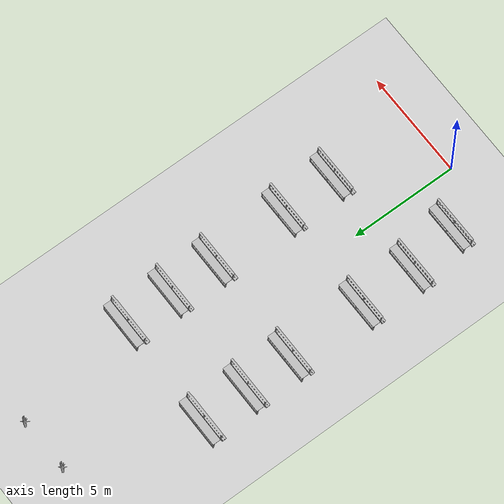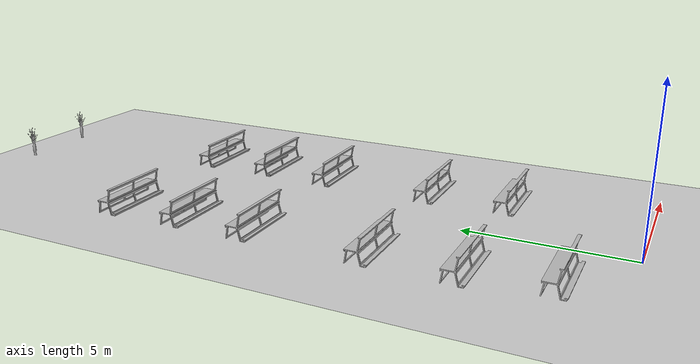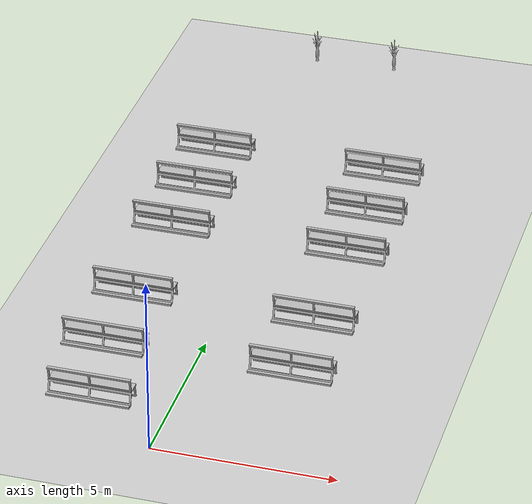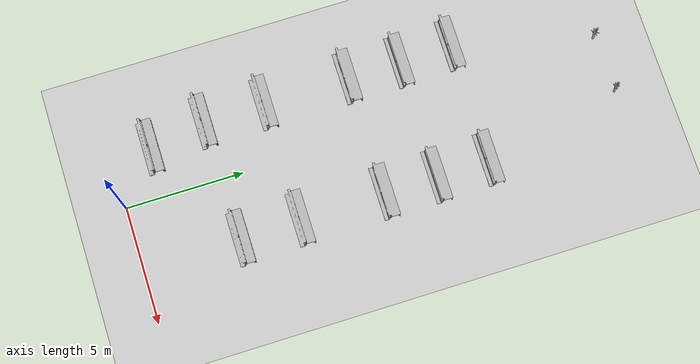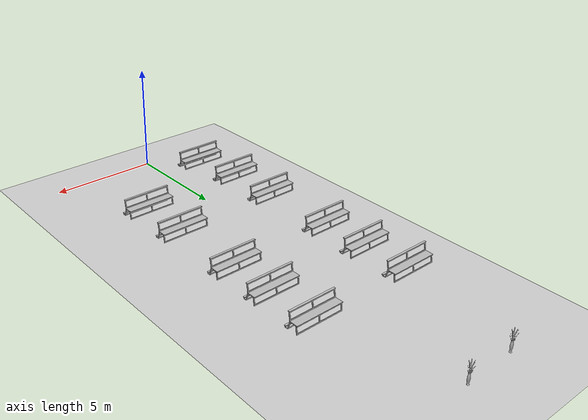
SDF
<sdf version="1.6">
 <world name="default">
  <light name="sun" type="directional">
   <pose>0 0 10 0 -0 0</pose>
   <diffuse>0.8 0.8 0.8 1</diffuse>
   <specular>0.2 0.2 0.2 1</specular>
   <attenuation>
    <range>1000</range>
    <constant>0.9</constant>
    <linear>0.01</linear>
    <quadratic>0.001</quadratic>
   </attenuation>
   <direction>-0.5 0.1 -0.9</direction>
  </light>
  <model name="ground_plane">
   <static>1</static>
   <link name="link">
    <collision name="collision">
     <geometry><plane><normal>0 0 1</normal><size>100 100</size></plane></geometry>
     <surface><friction><ode><mu>100</mu><mu2>50</mu2></ode></friction></surface>
    </collision>
    <visual name="visual">
     <cast_shadows>0</cast_shadows>
     <geometry><plane><normal>0 0 1</normal><size>100 100</size></plane></geometry>
     <material>
      <script><uri>file://media/materials/scripts/gazebo.material</uri><name>Gazebo/Grey</name></script>
     </material>
    </visual>
   </link>
  </model>
  <gravity>0 0 -9.8</gravity>
  <magnetic_field>6e-06 2.3e-05 -4.2e-05</magnetic_field>
  <atmosphere type="adiabatic"/>
  <physics name="default_physics" default="0" type="ode">
   <max_step_size>0.001</max_step_size>
   <real_time_factor>1</real_time_factor>
   <real_time_update_rate>1000</real_time_update_rate>
  </physics>
  <scene><ambient>0.4 0.4 0.4 1</ambient><background>0.7 0.7 0.7 1</background><shadows>1</shadows></scene>
  <spherical_coordinates>
   <surface_model>EARTH_WGS84</surface_model>
   <latitude_deg>0</latitude_deg>
   <longitude_deg>0</longitude_deg>
   <elevation>0</elevation>
   <heading_deg>0</heading_deg>
  </spherical_coordinates>
  <model name="Flower-2">
   <link name="link">
    <collision name="collision">
     <geometry><mesh><uri>model://Flower-2/meshes/model.dae</uri><scale>1 1 1</scale></mesh></geometry>
    </collision>
    <visual name="visual">
     <geometry><mesh><uri>model://Flower-2/meshes/model.dae</uri><scale>1 1 1</scale></mesh></geometry>
    </visual>
   </link>
   <static>1</static>
   <pose>1.01999 17.644 0.391083 0 -0 0</pose>
  </model>
  <model name="Flower-2_clone">
   <link name="link">
    <collision name="collision">
     <geometry><mesh><uri>model://Flower-2/meshes/model.dae</uri><scale>1 1 1</scale></mesh></geometry>
    </collision>
    <visual name="visual">
     <geometry><mesh><uri>model://Flower-2/meshes/model.dae</uri><scale>1 1 1</scale></mesh></geometry>
    </visual>
   </link>
   <static>1</static>
   <pose>3.47155 17.7144 0.404259 0 -0 0</pose>
  </model>
  <model name="Church-bench2_4">
   <link name="link">
    <collision name="collision">
     <geometry><mesh><uri>model://Church-bench2/meshes/model.dae</uri><scale>1 1 1</scale></mesh></geometry>
    </collision>
    <visual name="visual">
     <geometry><mesh><uri>model://Church-bench2/meshes/model.dae</uri><scale>1 1 1</scale></mesh></geometry>
    </visual>
   </link>
   <static>1</static>
   <pose>1.27618 6.1783 0.062704 0 -0 0</pose>
  </model>
  <model name="Church-bench2_5">
   <link name="link">
    <collision name="collision">
     <geometry><mesh><uri>model://Church-bench2/meshes/model.dae</uri><scale>1 1 1</scale></mesh></geometry>
    </collision>
    <visual name="visual">
     <geometry><mesh><uri>model://Church-bench2/meshes/model.dae</uri><scale>1 1 1</scale></mesh></geometry>
    </visual>
   </link>
   <static>1</static>
   <pose>1.24919 9.78851 0.067659 0 -0 0</pose>
  </model>
  <model name="Church-bench2_11">
   <link name="link">
    <collision name="collision">
     <geometry><mesh><uri>model://Church-bench2/meshes/model.dae</uri><scale>1 1 1</scale></mesh></geometry>
    </collision>
    <visual name="visual">
     <geometry><mesh><uri>model://Church-bench2/meshes/model.dae</uri><scale>1 1 1</scale></mesh></geometry>
    </visual>
   </link>
   <static>1</static>
   <pose>-3.43739 1.12889 0.112629 0 -0 0</pose>
  </model>
  <model name="Church-bench2_12">
   <link name="link">
    <collision name="collision">
     <geometry><mesh><uri>model://Church-bench2/meshes/model.dae</uri><scale>1 1 1</scale></mesh></geometry>
    </collision>
    <visual name="visual">
     <geometry><mesh><uri>model://Church-bench2/meshes/model.dae</uri><scale>1 1 1</scale></mesh></geometry>
    </visual>
   </link>
   <static>1</static>
   <pose>-3.85448 3.51068 0.097022 0 -0 0</pose>
  </model>
  <model name="Church-bench2_13">
   <link name="link">
    <collision name="collision">
     <geometry><mesh><uri>model://Church-bench2/meshes/model.dae</uri><scale>1 1 1</scale></mesh></geometry>
    </collision>
    <visual name="visual">
     <geometry><mesh><uri>model://Church-bench2/meshes/model.dae</uri><scale>1 1 1</scale></mesh></geometry>
    </visual>
   </link>
   <static>1</static>
   <pose>-3.86727 6.13475 0.094542 0 -0 0</pose>
  </model>
  <model name="Church-bench2_13_clone">
   <link name="link">
    <collision name="collision">
     <geometry><mesh><uri>model://Church-bench2/meshes/model.dae</uri><scale>1 1 1</scale></mesh></geometry>
    </collision>
    <visual name="visual">
     <geometry><mesh><uri>model://Church-bench2/meshes/model.dae</uri><scale>1 1 1</scale></mesh></geometry>
    </visual>
   </link>
   <static>1</static>
   <pose>-3.90242 9.79284 0.094542 0 -0 0</pose>
  </model>
  <model name="Church-bench2_13_clone_0">
   <link name="link">
    <collision name="collision">
     <geometry><mesh><uri>model://Church-bench2/meshes/model.dae</uri><scale>1 1 1</scale></mesh></geometry>
    </collision>
    <visual name="visual">
     <geometry><mesh><uri>model://Church-bench2/meshes/model.dae</uri><scale>1 1 1</scale></mesh></geometry>
    </visual>
   </link>
   <static>1</static>
   <pose>-3.9164 12.0715 0.094542 0 -0 0</pose>
  </model>
  <model name="Church-bench2_13_clone_1">
   <link name="link">
    <collision name="collision">
     <geometry><mesh><uri>model://Church-bench2/meshes/model.dae</uri><scale>1 1 1</scale></mesh></geometry>
    </collision>
    <visual name="visual">
     <geometry><mesh><uri>model://Church-bench2/meshes/model.dae</uri><scale>1 1 1</scale></mesh></geometry>
    </visual>
   </link>
   <static>1</static>
   <pose>-3.98797 14.3319 0.094542 0 -0 0</pose>
  </model>
  <model name="Church-bench2_13_clone_2">
   <link name="link">
    <collision name="collision">
     <geometry><mesh><uri>model://Church-bench2/meshes/model.dae</uri><scale>1 1 1</scale></mesh></geometry>
    </collision>
    <visual name="visual">
     <geometry><mesh><uri>model://Church-bench2/meshes/model.dae</uri><scale>1 1 1</scale></mesh></geometry>
    </visual>
   </link>
   <static>1</static>
   <pose>1.34171 3.63118 0.094542 0 -0 0</pose>
  </model>
  <model name="Church-bench2_13_clone_3">
   <link name="link">
    <collision name="collision">
     <geometry><mesh><uri>model://Church-bench2/meshes/model.dae</uri><scale>1 1 1</scale></mesh></geometry>
    </collision>
    <visual name="visual">
     <geometry><mesh><uri>model://Church-bench2/meshes/model.dae</uri><scale>1 1 1</scale></mesh></geometry>
    </visual>
   </link>
   <static>1</static>
   <pose>1.23927 12.0345 0.094542 0 -0 0</pose>
  </model>
  <model name="Church-bench2_13_clone_4">
   <link name="link">
    <collision name="collision">
     <geometry><mesh><uri>model://Church-bench2/meshes/model.dae</uri><scale>1 1 1</scale></mesh></geometry>
    </collision>
    <visual name="visual">
     <geometry><mesh><uri>model://Church-bench2/meshes/model.dae</uri><scale>1 1 1</scale></mesh></geometry>
    </visual>
   </link>
   <static>1</static>
   <pose>1.19104 14.3059 0.094542 0 -0 0</pose>
  </model>
 </world>
</sdf>
